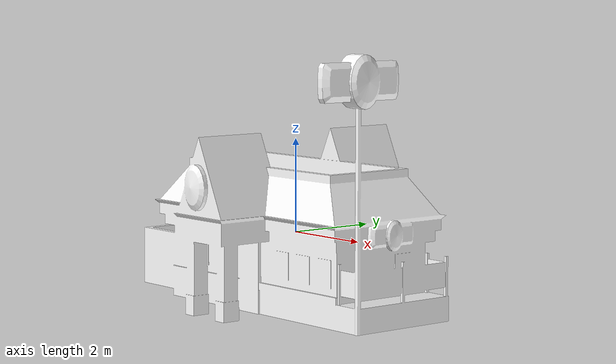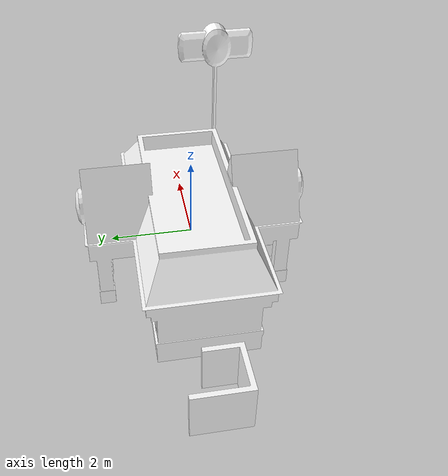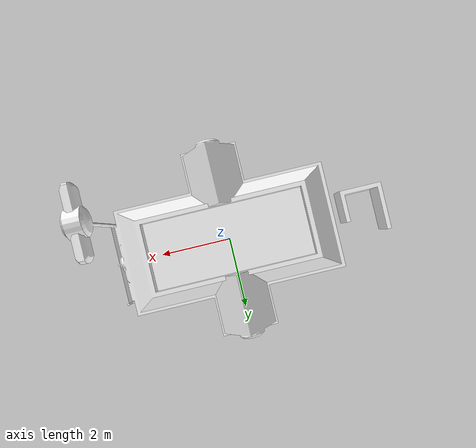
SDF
<?xml version="1.0"?>
<sdf version="1.3">
  <model name="Fast Food">
    <static>true</static>
    <link name="link">
      <pose>0 0 0 0 0 0</pose>
      <collision name="collision">
        <geometry>
          <mesh>
            <uri>model://fast_food/meshes/fast_food.dae</uri>
          </mesh>
        </geometry>
      </collision>
      <visual name="visual">
        <geometry>
          <mesh>
            <uri>model://fast_food/meshes/fast_food.dae</uri>
          </mesh>
        </geometry>
        <material>
          <script>
            <uri>model://fast_food/materials/scripts</uri>
            <uri>model://fast_food/materials/textures</uri>
            <name>FastFood/Diffuse</name>
          </script>
        </material>
      </visual>
    </link>
  </model>
</sdf>
